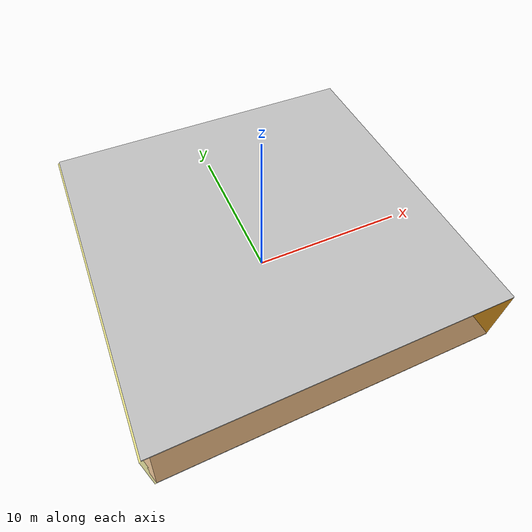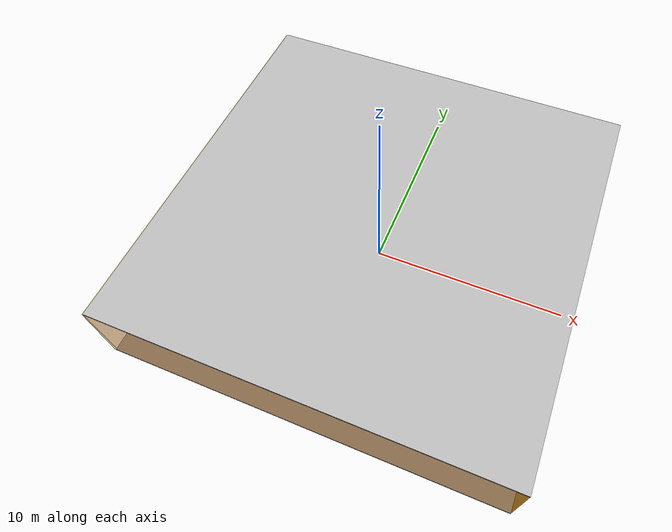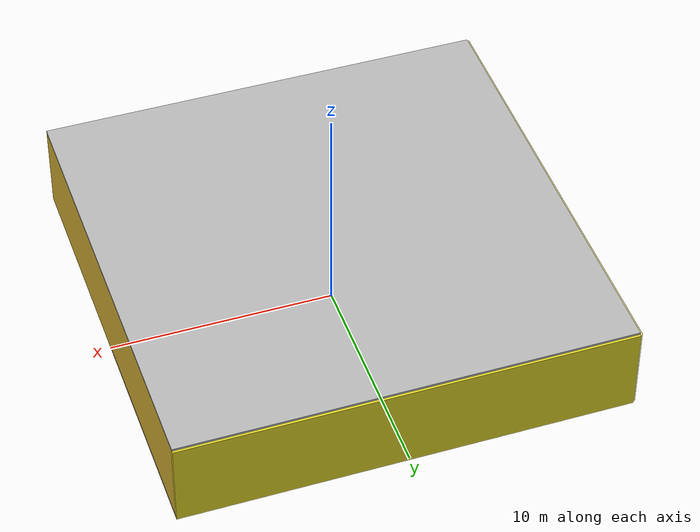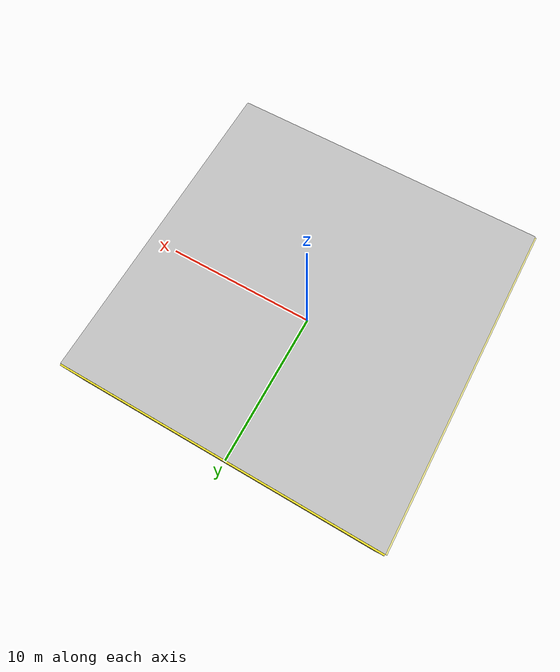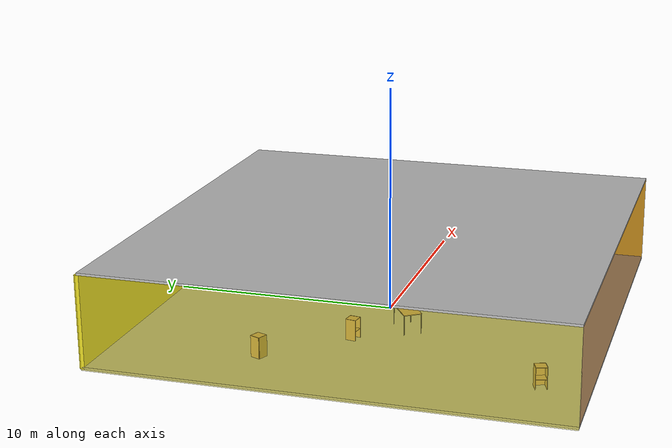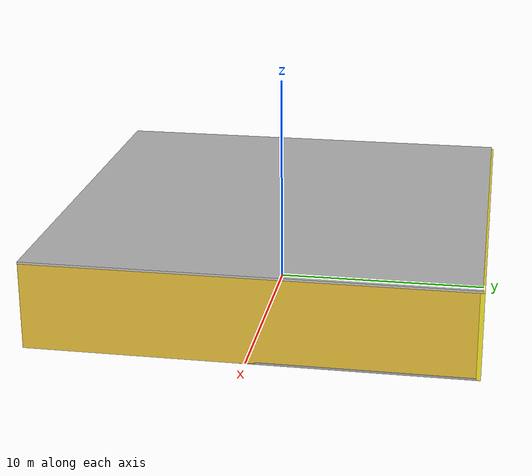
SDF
<sdf version="1.4">
 <world name="default">
  <physics type="ode">
   <max_step_size>0.001</max_step_size>
   <real_time_factor>1</real_time_factor>
   <real_time_update_rate>1000</real_time_update_rate>
   <gravity>0 0 -9.8</gravity>
  </physics>
  <scene><ambient>0.4 0.4 0.4 1</ambient><background>0.7 0.7 0.7 1</background><shadows>1</shadows></scene>
  <model name="Surrounding">
   <static>1</static>
   <link name="Ceiling">
    <collision name="Ceiling_Collision"><geometry><box><size>20 20 0.1</size></box></geometry></collision>
    <visual name="Ceiling_Visual">
     <geometry><box><size>20 20 0.1</size></box></geometry>
     <material>
      <script><uri>file://media/materials/scripts/gazebo.material</uri><name>Gazebo/LightOn</name></script>
     </material>
    </visual>
    <pose>0 0 4.05 0 0 0</pose>
   </link>
   <link name="Wall_South">
    <collision name="Wall_South_Collision">
     <geometry><box><size>20 0 4</size></box></geometry>
     <pose>0 0 2 0 -0 0</pose>
    </collision>
    <visual name="Wall_South_Visual">
     <pose>0 0 2 0 -0 0</pose>
     <geometry><box><size>20 0 4</size></box></geometry>
     <material>
      <script>
       <uri>file://media/materials/scripts/gazebo.material</uri>
       <name>Gazebo/OrangeTransparent</name>
      </script>
     </material>
    </visual>
    <velocity_decay><linear>0</linear><angular>0</angular></velocity_decay>
    <pose>0 -10 0 0 -0 0</pose>
   </link>
   <link name="Wall_East">
    <collision name="Wall_21_Collision">
     <geometry><box><size>20 0 4</size></box></geometry>
     <pose>0 0 2 0 -0 0</pose>
    </collision>
    <visual name="Wall_21_Visual">
     <pose>0 0 2 0 -0 0</pose>
     <geometry><box><size>20 0 4</size></box></geometry>
     <material>
      <script><uri>file://media/materials/scripts/gazebo.material</uri><name>Gazebo/Gold</name></script>
     </material>
    </visual>
    <velocity_decay><linear>0</linear><angular>0</angular></velocity_decay>
    <pose>10 0 0 0 -0 1.5708</pose>
   </link>
   <link name="Wall_North">
    <collision name="Wall_22_Collision">
     <geometry><box><size>20 0.2 4</size></box></geometry>
     <pose>0 0 2 0 -0 0</pose>
    </collision>
    <visual name="Wall_22_Visual">
     <pose>0 0 2 0 -0 0</pose>
     <geometry><box><size>20 0.2 4</size></box></geometry>
     <material>
      <script><uri>file://media/materials/scripts/gazebo.material</uri><name>Gazebo/Yellow</name></script>
     </material>
    </visual>
    <velocity_decay><linear>0</linear><angular>0</angular></velocity_decay>
    <pose>0 10 0 0 -0 0</pose>
   </link>
   <link name="Wall_West">
    <collision name="Wall_23_Collision">
     <geometry><box><size>20 0.2 4</size></box></geometry>
     <pose>0 0 2 0 -0 0</pose>
    </collision>
    <visual name="Wall_23_Visual">
     <pose>0 0 2 0 -0 0</pose>
     <geometry><box><size>20 0.2 4</size></box></geometry>
     <material>
      <script>
       <uri>file://media/materials/scripts/gazebo.material</uri>
       <name>Gazebo/YellowTransparent</name>
      </script>
     </material>
    </visual>
    <velocity_decay><linear>0</linear><angular>0</angular></velocity_decay>
    <pose>-10 0 0 0 0 -1.5708</pose>
   </link>
   <link name="Ground_link">
    <collision name="collision">
     <pose>0 0 .05 0 -0 0</pose>
     <geometry><box><size>20 20 0.1</size></box></geometry>
    </collision>
    <visual name="visual">
     <pose>0 0 .05 0 -0 0</pose>
     <geometry><box><size>20 20 0.1</size></box></geometry>
     <material>
      <script><uri>file://media/materials/scripts/gazebo.material</uri><name>Gazebo/Grey</name></script>
     </material>
    </visual>
   </link>
   <static>1</static>
  </model>
  <spherical_coordinates>
   <surface_model>EARTH_WGS84</surface_model>
   <latitude_deg>0</latitude_deg>
   <longitude_deg>0</longitude_deg>
   <elevation>0</elevation>
   <heading_deg>0</heading_deg>
  </spherical_coordinates>
  <light name="lightball_0" type="diffuse">
   <diffuse>0.8 0.8 0.8 1</diffuse>
   <specular>0.2 0.2 0.2 1</specular>
   <attenuation>
    <range>100</range>
    <constant>0.7</constant>
    <linear>0.01</linear>
    <quadratic>0.001</quadratic>
   </attenuation>
   <direction>-0.5 0.1 -0.9</direction>
   <pose>-9.632683391 -3.15232412337 0.908288828427 0 0 0</pose>
  </light>
  <light name="lightball_1" type="diffuse">
   <diffuse>0.8 0.8 0.8 1</diffuse>
   <specular>0.2 0.2 0.2 1</specular>
   <attenuation>
    <range>100</range>
    <constant>0.7</constant>
    <linear>0.01</linear>
    <quadratic>0.001</quadratic>
   </attenuation>
   <direction>-0.5 0.1 -0.9</direction>
   <pose>-0.0401352137875 -8.97660978075 2.24596331407 0 0 0</pose>
  </light>
  <light name="lightball_2" type="diffuse">
   <diffuse>0.8 0.8 0.8 1</diffuse>
   <specular>0.2 0.2 0.2 1</specular>
   <attenuation>
    <range>100</range>
    <constant>0.7</constant>
    <linear>0.01</linear>
    <quadratic>0.001</quadratic>
   </attenuation>
   <direction>-0.5 0.1 -0.9</direction>
   <pose>-2.51875229046 -6.91353278467 2.38481872449 0 0 0</pose>
  </light>
  <light name="lightball_3" type="diffuse">
   <diffuse>0.8 0.8 0.8 1</diffuse>
   <specular>0.2 0.2 0.2 1</specular>
   <attenuation>
    <range>100</range>
    <constant>0.7</constant>
    <linear>0.01</linear>
    <quadratic>0.001</quadratic>
   </attenuation>
   <direction>-0.5 0.1 -0.9</direction>
   <pose>8.95826817804 5.05835873795 2.96696485317 0 0 0</pose>
  </light>
  <light name="lightball_4" type="diffuse">
   <diffuse>0.8 0.8 0.8 1</diffuse>
   <specular>0.2 0.2 0.2 1</specular>
   <attenuation>
    <range>100</range>
    <constant>0.7</constant>
    <linear>0.01</linear>
    <quadratic>0.001</quadratic>
   </attenuation>
   <direction>-0.5 0.1 -0.9</direction>
   <pose>-9.05284486378 -8.63290841785 2.60866703341 0 0 0</pose>
  </light>
  <include><uri>model://cabinet</uri><pose>-6.89369459271 -7.99516617224 0 0 0 0.357239341267</pose></include>
  <include><uri>model://cabinet</uri><pose>-6.97157440153 3.59077588869 0 0 0 2.73830719135</pose></include>
  <include><uri>model://cabinet</uri><pose>-4.10321983215 0.465045748568 0 0 0 1.40512377655</pose></include>
  <include><uri>model://table</uri><pose>-2.39956472018 -1.42877506015 0 0 0 0.593561587774</pose></include>
  <include><uri>model://cabinet</uri><pose>2.00355803848 -5.51909126352 0 0 0 0.559805580498</pose></include>
  <include><uri>model://cabinet</uri><pose>5.24215641236 -4.93664495162 0 0 0 2.44509293187</pose></include>
 </world>
</sdf>

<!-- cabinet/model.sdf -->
<sdf version="1.5">
  <model name="cabinet">
    <static>true</static>
    <link name="cabinet_bottom_plate">
      <inertial>
        <pose>0 0 -1 0 0 0</pose>
        <inertia>
          <ixx>2.050000</ixx>
          <ixy>0</ixy>
          <ixz>0</ixz>
          <iyy>2.050000</iyy>
          <iyz>0</iyz>
          <izz>2.050000</izz>
        </inertia>
        <mass>25.000000</mass>
      </inertial>
      <collision name="cabinet_bottom_plate_geom">
        <pose>0 0 0.010000 0 0 0</pose>
        <geometry>
          <box>
            <size>0.450000 0.450000 0.020000</size>
          </box>
        </geometry>
      </collision>
      <visual name="cabinet_bottom_plate_geom_visual">
        <pose>0 0 0.010000 0 0 0</pose>
        <geometry>
          <box>
            <size>0.450000 0.450000 0.020000</size>
          </box>
        </geometry>
        <material>
          <script>
            <uri>model://media/materials/scripts/gazebo.material</uri>
            <name>Gazebo/Wood</name>
          </script>
        </material>
      </visual>
      <collision name="cabinet_bottom_plate_geom_cabinet_back_plate">
        <pose>0.235000 0 0.510000 0 0 0</pose>
        <geometry>
          <box>
            <size>0.020000 0.450000 1.020000</size>
          </box>
        </geometry>
      </collision>
      <visual name="cabinet_bottom_plate_geom_cabinet_back_plate_visual">
        <pose>0.235000 0 0.510000 0 0 0</pose>
        <geometry>
          <box>
            <size>0.020000 0.450000 1.020000</size>
          </box>
        </geometry>
        <material>
          <script>
            <uri>model://media/materials/scripts/gazebo.material</uri>
            <name>Gazebo/Wood</name>
          </script>
        </material>
      </visual>
      <collision name="cabinet_bottom_plate_geom_cabinet_left_plate">
        <pose>0 0.235000 0.510000 0 0 0</pose>
        <geometry>
          <box>
            <size>0.450000 0.020000 1.020000</size>
          </box>
        </geometry>
      </collision>
      <visual name="cabinet_bottom_plate_geom_cabinet_left_plate_visual">
        <pose>0 0.235000 0.510000 0 0 0</pose>
        <geometry>
          <box>
            <size>0.450000 0.020000 1.020000</size>
          </box>
        </geometry>
        <material>
          <script>
            <uri>model://media/materials/scripts/gazebo.material</uri>
            <name>Gazebo/Wood</name>
          </script>
        </material>
      </visual>
      <collision name="cabinet_bottom_plate_geom_cabinet_middle_plate">
        <pose>0 0 0.510000 0 0 0</pose>
        <geometry>
          <box>
            <size>0.450000 0.450000 0.020000</size>
          </box>
        </geometry>
      </collision>
      <visual name="cabinet_bottom_plate_geom_cabinet_middle_plate_visual">
        <pose>0 0 0.510000 0 0 0</pose>
        <geometry>
          <box>
            <size>0.450000 0.450000 0.020000</size>
          </box>
        </geometry>
        <material>
          <script>
            <uri>model://media/materials/scripts/gazebo.material</uri>
            <name>Gazebo/Wood</name>
          </script>
        </material>
      </visual>
      <collision name="cabinet_bottom_plate_geom_cabinet_right_plate">
        <pose>0 -0.235000 0.510000 0 0 0</pose>
        <geometry>
          <box>
            <size>0.450000 0.020000 1.020000</size>
          </box>
        </geometry>
      </collision>
      <visual name="cabinet_bottom_plate_geom_cabinet_right_plate_visual">
        <pose>0 -0.235000 0.510000 0 0 0</pose>
        <geometry>
          <box>
            <size>0.450000 0.020000 1.020000</size>
          </box>
        </geometry>
        <material>
          <script>
            <uri>model://media/materials/scripts/gazebo.material</uri>
            <name>Gazebo/Wood</name>
          </script>
        </material>
      </visual>
      <collision name="cabinet_bottom_plate_geom_cabinet_top_plate">
        <pose>0 0 1.010000 0 0 0</pose>
        <geometry>
          <box>
            <size>0.450000 0.450000 0.020000</size>
          </box>
        </geometry>
      </collision>
      <visual name="cabinet_bottom_plate_geom_cabinet_top_plate_visual">
        <pose>0 0 1.010000 0 0 0</pose>
        <geometry>
          <box>
            <size>0.450000 0.450000 0.020000</size>
          </box>
        </geometry>
        <material>
          <script>
            <uri>model://media/materials/scripts/gazebo.material</uri>
            <name>Gazebo/Wood</name>
          </script>
        </material>
      </visual>
    </link>
  </model>
</sdf>

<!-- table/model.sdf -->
<sdf version="1.5">
  <model name="table">
    <static>true</static>
    <link name="link">
      <collision name="surface">
        <pose>0 0 1.0 0 0 0</pose>
        <geometry>
          <box>
            <size>1.5 0.8 0.03</size>
          </box>
        </geometry>
        <surface>
          <friction>
            <ode>
              <mu>0.6</mu>
              <mu2>0.6</mu2>
            </ode>
          </friction>
        </surface>
      </collision>
      <visual name="visual1">
        <pose>0 0 1.0 0 0 0</pose>
        <geometry>
          <box>
            <size>1.5 0.8 0.03</size>
          </box>
        </geometry>
        <material>
          <script>
            <uri>model://media/materials/scripts/gazebo.material</uri>
            <name>Gazebo/Wood</name>
          </script>
        </material>
      </visual>
      <collision name="front_left_leg">
        <pose>0.68 0.38 0.5 0 0 0</pose>
        <geometry>
          <cylinder>
            <radius>0.02</radius>
            <length>1.0</length>
          </cylinder>
        </geometry>
      </collision>
      <visual name="front_left_leg">
        <pose>0.68 0.38 0.5 0 0 0</pose>
        <geometry>
          <cylinder>
            <radius>0.02</radius>
            <length>1.0</length>
          </cylinder>
        </geometry>
        <material>
          <script>
            <uri>model://media/materials/scripts/gazebo.material</uri>
            <name>Gazebo/Grey</name>
          </script>
        </material>
      </visual>
      <collision name="front_right_leg">
        <pose>0.68 -0.38 0.5 0 0 0</pose>
        <geometry>
          <cylinder>
            <radius>0.02</radius>
            <length>1.0</length>
          </cylinder>
        </geometry>
      </collision>
      <visual name="front_right_leg">
        <pose>0.68 -0.38 0.5 0 0 0</pose>
        <geometry>
          <cylinder>
            <radius>0.02</radius>
            <length>1.0</length>
          </cylinder>
        </geometry>
        <material>
          <script>
            <uri>model://media/materials/scripts/gazebo.material</uri>
            <name>Gazebo/Grey</name>
          </script>
        </material>
      </visual>
      <collision name="back_right_leg">
        <pose>-0.68 -0.38 0.5 0 0 0</pose>
        <geometry>
          <cylinder>
            <radius>0.02</radius>
            <length>1.0</length>
          </cylinder>
        </geometry>
      </collision>
      <visual name="back_right_leg">
        <pose>-0.68 -0.38 0.5 0 0 0</pose>
        <geometry>
          <cylinder>
            <radius>0.02</radius>
            <length>1.0</length>
          </cylinder>
        </geometry>
        <material>
          <script>
            <uri>model://media/materials/scripts/gazebo.material</uri>
            <name>Gazebo/Grey</name>
          </script>
        </material>
      </visual>
      <collision name="back_left_leg">
        <pose>-0.68 0.38 0.5 0 0 0</pose>
        <geometry>
          <cylinder>
            <radius>0.02</radius>
            <length>1.0</length>
          </cylinder>
        </geometry>
      </collision>
      <visual name="back_left_leg">
        <pose>-0.68 0.38 0.5 0 0 0</pose>
        <geometry>
          <cylinder>
            <radius>0.02</radius>
            <length>1.0</length>
          </cylinder>
        </geometry>
        <material>
          <script>
            <uri>model://media/materials/scripts/gazebo.material</uri>
            <name>Gazebo/Grey</name>
          </script>
        </material>
      </visual>
    </link>
  </model>
</sdf>
